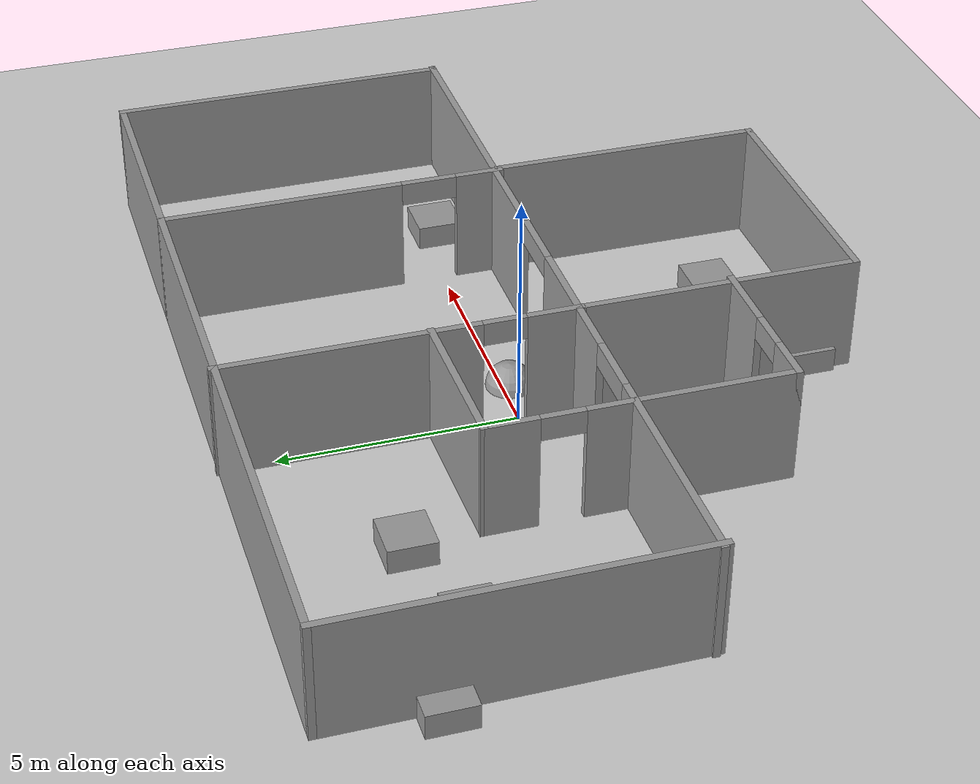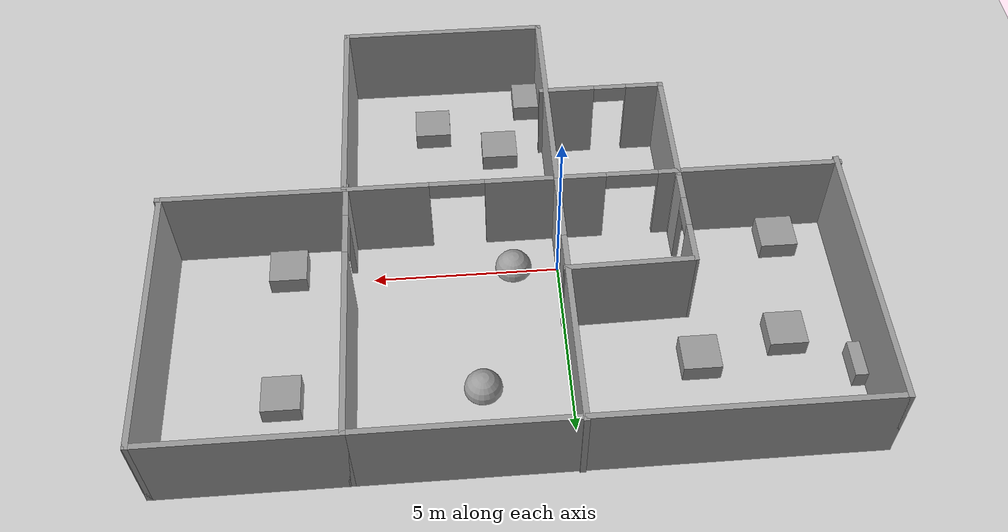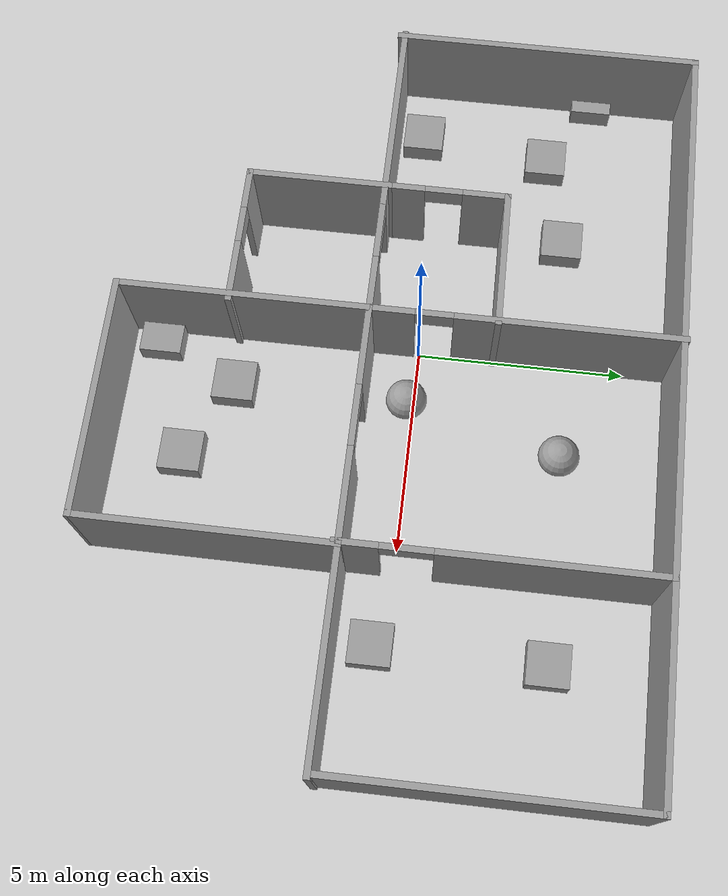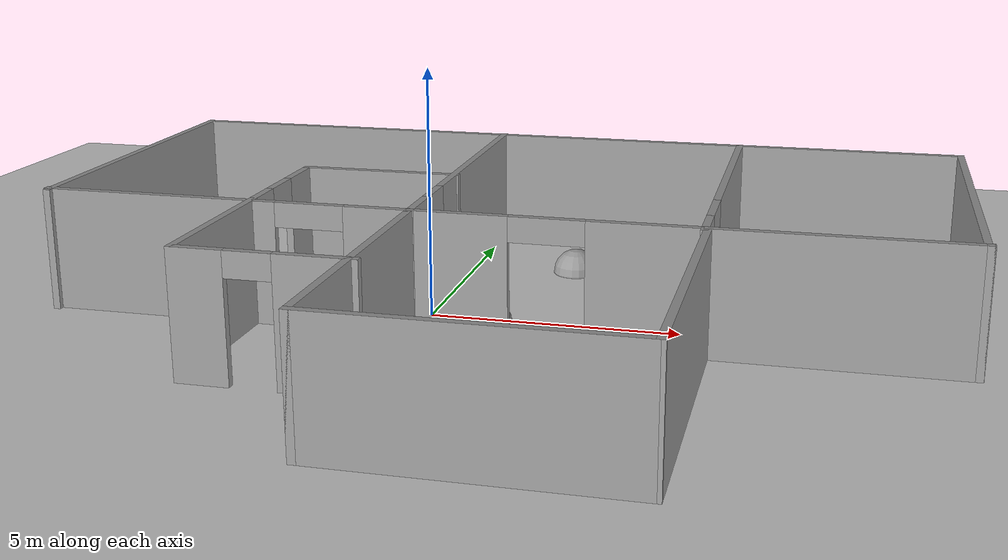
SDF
<?xml version="1.0" ?>
<sdf version="1.4">
  <world name="default">
    <include>
      <uri>model://ground_plane</uri>
    </include>
    <include>
      <uri>model://sun</uri>
    </include>
    <include>
      <uri>/home/anubhav/model_editor_models/floorplan_with_objects</uri>
    </include>
    <include>
      <uri>/home/anubhav/building_editor_models/Floorplan</uri>
      <name>gas_station</name>
    </include>
  </world>
</sdf>

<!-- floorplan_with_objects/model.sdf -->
<sdf version='1.6'>
  <model name='floorplan_with_objects'>
    <link name='link_0'>
      <inertial>
        <mass>1</mass>
        <inertia>
          <ixx>0.166667</ixx>
          <ixy>0</ixy>
          <ixz>0</ixz>
          <iyy>0.166667</iyy>
          <iyz>0</iyz>
          <izz>0.166667</izz>
        </inertia>
      </inertial>
      <pose frame=''>-5.69964 2.68015 0 0 -0 0</pose>
      <visual name='visual'>
        <pose frame=''>0 0 0 0 -0 0</pose>
        <geometry>
          <box>
            <size>1 1 1</size>
          </box>
        </geometry>
        <material>
          <lighting>1</lighting>
          <script>
            <uri>file://media/materials/scripts/gazebo.material</uri>
            <name>Gazebo/Grey</name>
          </script>
        </material>
        <transparency>0</transparency>
        <cast_shadows>1</cast_shadows>
      </visual>
      <collision name='collision'>
        <laser_retro>0</laser_retro>
        <max_contacts>10</max_contacts>
        <pose frame=''>0 0 0 0 -0 0</pose>
        <geometry>
          <box>
            <size>1 1 1</size>
          </box>
        </geometry>
        <surface>
          <friction>
            <ode>
              <mu>1</mu>
              <mu2>1</mu2>
              <fdir1>0 0 0</fdir1>
              <slip1>0</slip1>
              <slip2>0</slip2>
            </ode>
            <torsional>
              <coefficient>1</coefficient>
              <patch_radius>0</patch_radius>
              <surface_radius>0</surface_radius>
              <use_patch_radius>1</use_patch_radius>
              <ode>
                <slip>0</slip>
              </ode>
            </torsional>
          </friction>
          <bounce>
            <restitution_coefficient>0</restitution_coefficient>
            <threshold>1e+06</threshold>
          </bounce>
          <contact>
            <collide_without_contact>0</collide_without_contact>
            <collide_without_contact_bitmask>1</collide_without_contact_bitmask>
            <collide_bitmask>1</collide_bitmask>
            <ode>
              <soft_cfm>0</soft_cfm>
              <soft_erp>0.2</soft_erp>
              <kp>1e+13</kp>
              <kd>1</kd>
              <max_vel>0.01</max_vel>
              <min_depth>0</min_depth>
            </ode>
            <bullet>
              <split_impulse>1</split_impulse>
              <split_impulse_penetration_threshold>-0.01</split_impulse_penetration_threshold>
              <soft_cfm>0</soft_cfm>
              <soft_erp>0.2</soft_erp>
              <kp>1e+13</kp>
              <kd>1</kd>
            </bullet>
          </contact>
        </surface>
      </collision>
    </link>
    <link name='link_1'>
      <inertial>
        <mass>1</mass>
        <inertia>
          <ixx>0.1</ixx>
          <ixy>0</ixy>
          <ixz>0</ixz>
          <iyy>0.1</iyy>
          <iyz>0</iyz>
          <izz>0.1</izz>
        </inertia>
      </inertial>
      <pose frame=''>2.23614 3.61059 0 0 -0 0</pose>
      <visual name='visual'>
        <pose frame=''>0 0 0 0 -0 0</pose>
        <geometry>
          <sphere>
            <radius>0.5</radius>
          </sphere>
        </geometry>
        <material>
          <lighting>1</lighting>
          <script>
            <uri>file://media/materials/scripts/gazebo.material</uri>
            <name>Gazebo/Grey</name>
          </script>
        </material>
        <transparency>0</transparency>
        <cast_shadows>1</cast_shadows>
      </visual>
      <collision name='collision'>
        <laser_retro>0</laser_retro>
        <max_contacts>10</max_contacts>
        <pose frame=''>0 0 0 0 -0 0</pose>
        <geometry>
          <sphere>
            <radius>0.5</radius>
          </sphere>
        </geometry>
        <surface>
          <friction>
            <ode>
              <mu>1</mu>
              <mu2>1</mu2>
              <fdir1>0 0 0</fdir1>
              <slip1>0</slip1>
              <slip2>0</slip2>
            </ode>
            <torsional>
              <coefficient>1</coefficient>
              <patch_radius>0</patch_radius>
              <surface_radius>0</surface_radius>
              <use_patch_radius>1</use_patch_radius>
              <ode>
                <slip>0</slip>
              </ode>
            </torsional>
          </friction>
          <bounce>
            <restitution_coefficient>0</restitution_coefficient>
            <threshold>1e+06</threshold>
          </bounce>
          <contact>
            <collide_without_contact>0</collide_without_contact>
            <collide_without_contact_bitmask>1</collide_without_contact_bitmask>
            <collide_bitmask>1</collide_bitmask>
            <ode>
              <soft_cfm>0</soft_cfm>
              <soft_erp>0.2</soft_erp>
              <kp>1e+13</kp>
              <kd>1</kd>
              <max_vel>0.01</max_vel>
              <min_depth>0</min_depth>
            </ode>
            <bullet>
              <split_impulse>1</split_impulse>
              <split_impulse_penetration_threshold>-0.01</split_impulse_penetration_threshold>
              <soft_cfm>0</soft_cfm>
              <soft_erp>0.2</soft_erp>
              <kp>1e+13</kp>
              <kd>1</kd>
            </bullet>
          </contact>
        </surface>
      </collision>
    </link>
    <link name='link_10'>
      <inertial>
        <mass>1</mass>
        <inertia>
          <ixx>0.166667</ixx>
          <ixy>0</ixy>
          <ixz>0</ixz>
          <iyy>0.166667</iyy>
          <iyz>0</iyz>
          <izz>0.166667</izz>
        </inertia>
      </inertial>
      <pose frame=''>-7.65721 3.74902 0 0 -0 0</pose>
      <visual name='visual'>
        <pose frame=''>0 0 0 0 -0 0</pose>
        <geometry>
          <box>
            <size>1 1 1</size>
          </box>
        </geometry>
        <material>
          <lighting>1</lighting>
          <script>
            <uri>file://media/materials/scripts/gazebo.material</uri>
            <name>Gazebo/Grey</name>
          </script>
        </material>
        <transparency>0</transparency>
        <cast_shadows>1</cast_shadows>
      </visual>
      <collision name='collision'>
        <laser_retro>0</laser_retro>
        <max_contacts>10</max_contacts>
        <pose frame=''>0 0 0 0 -0 0</pose>
        <geometry>
          <box>
            <size>1 1 1</size>
          </box>
        </geometry>
        <surface>
          <friction>
            <ode>
              <mu>1</mu>
              <mu2>1</mu2>
              <fdir1>0 0 0</fdir1>
              <slip1>0</slip1>
              <slip2>0</slip2>
            </ode>
            <torsional>
              <coefficient>1</coefficient>
              <patch_radius>0</patch_radius>
              <surface_radius>0</surface_radius>
              <use_patch_radius>1</use_patch_radius>
              <ode>
                <slip>0</slip>
              </ode>
            </torsional>
          </friction>
          <bounce>
            <restitution_coefficient>0</restitution_coefficient>
            <threshold>1e+06</threshold>
          </bounce>
          <contact>
            <collide_without_contact>0</collide_without_contact>
            <collide_without_contact_bitmask>1</collide_without_contact_bitmask>
            <collide_bitmask>1</collide_bitmask>
            <ode>
              <soft_cfm>0</soft_cfm>
              <soft_erp>0.2</soft_erp>
              <kp>1e+13</kp>
              <kd>1</kd>
              <max_vel>0.01</max_vel>
              <min_depth>0</min_depth>
            </ode>
            <bullet>
              <split_impulse>1</split_impulse>
              <split_impulse_penetration_threshold>-0.01</split_impulse_penetration_threshold>
              <soft_cfm>0</soft_cfm>
              <soft_erp>0.2</soft_erp>
              <kp>1e+13</kp>
              <kd>1</kd>
            </bullet>
          </contact>
        </surface>
      </collision>
    </link>
    <link name='link_2'>
      <inertial>
        <mass>1</mass>
        <inertia>
          <ixx>0.1</ixx>
          <ixy>0</ixy>
          <ixz>0</ixz>
          <iyy>0.1</iyy>
          <iyz>0</iyz>
          <izz>0.1</izz>
        </inertia>
      </inertial>
      <pose frame=''>1.19211 -0.180632 0 0 -0 0</pose>
      <visual name='visual'>
        <pose frame=''>0 0 0 0 -0 0</pose>
        <geometry>
          <sphere>
            <radius>0.5</radius>
          </sphere>
        </geometry>
        <material>
          <lighting>1</lighting>
          <script>
            <uri>file://media/materials/scripts/gazebo.material</uri>
            <name>Gazebo/Grey</name>
          </script>
        </material>
        <transparency>0</transparency>
        <cast_shadows>1</cast_shadows>
      </visual>
      <collision name='collision'>
        <laser_retro>0</laser_retro>
        <max_contacts>10</max_contacts>
        <pose frame=''>0 0 0 0 -0 0</pose>
        <geometry>
          <sphere>
            <radius>0.5</radius>
          </sphere>
        </geometry>
        <surface>
          <friction>
            <ode>
              <mu>1</mu>
              <mu2>1</mu2>
              <fdir1>0 0 0</fdir1>
              <slip1>0</slip1>
              <slip2>0</slip2>
            </ode>
            <torsional>
              <coefficient>1</coefficient>
              <patch_radius>0</patch_radius>
              <surface_radius>0</surface_radius>
              <use_patch_radius>1</use_patch_radius>
              <ode>
                <slip>0</slip>
              </ode>
            </torsional>
          </friction>
          <bounce>
            <restitution_coefficient>0</restitution_coefficient>
            <threshold>1e+06</threshold>
          </bounce>
          <contact>
            <collide_without_contact>0</collide_without_contact>
            <collide_without_contact_bitmask>1</collide_without_contact_bitmask>
            <collide_bitmask>1</collide_bitmask>
            <ode>
              <soft_cfm>0</soft_cfm>
              <soft_erp>0.2</soft_erp>
              <kp>1e+13</kp>
              <kd>1</kd>
              <max_vel>0.01</max_vel>
              <min_depth>0</min_depth>
            </ode>
            <bullet>
              <split_impulse>1</split_impulse>
              <split_impulse_penetration_threshold>-0.01</split_impulse_penetration_threshold>
              <soft_cfm>0</soft_cfm>
              <soft_erp>0.2</soft_erp>
              <kp>1e+13</kp>
              <kd>1</kd>
            </bullet>
          </contact>
        </surface>
      </collision>
    </link>
    <link name='link_3'>
      <inertial>
        <mass>1</mass>
        <inertia>
          <ixx>0.166667</ixx>
          <ixy>0</ixy>
          <ixz>0</ixz>
          <iyy>0.166667</iyy>
          <iyz>0</iyz>
          <izz>0.166667</izz>
        </inertia>
      </inertial>
      <pose frame=''>7.27265 -0.327209 0 0 -0 0</pose>
      <visual name='visual'>
        <pose frame=''>0 0 0 0 -0 0</pose>
        <geometry>
          <box>
            <size>1 1 1</size>
          </box>
        </geometry>
        <material>
          <lighting>1</lighting>
          <script>
            <uri>file://media/materials/scripts/gazebo.material</uri>
            <name>Gazebo/Grey</name>
          </script>
        </material>
        <transparency>0</transparency>
        <cast_shadows>1</cast_shadows>
      </visual>
      <collision name='collision'>
        <laser_retro>0</laser_retro>
        <max_contacts>10</max_contacts>
        <pose frame=''>0 0 0 0 -0 0</pose>
        <geometry>
          <box>
            <size>1 1 1</size>
          </box>
        </geometry>
        <surface>
          <friction>
            <ode>
              <mu>1</mu>
              <mu2>1</mu2>
              <fdir1>0 0 0</fdir1>
              <slip1>0</slip1>
              <slip2>0</slip2>
            </ode>
            <torsional>
              <coefficient>1</coefficient>
              <patch_radius>0</patch_radius>
              <surface_radius>0</surface_radius>
              <use_patch_radius>1</use_patch_radius>
              <ode>
                <slip>0</slip>
              </ode>
            </torsional>
          </friction>
          <bounce>
            <restitution_coefficient>0</restitution_coefficient>
            <threshold>1e+06</threshold>
          </bounce>
          <contact>
            <collide_without_contact>0</collide_without_contact>
            <collide_without_contact_bitmask>1</collide_without_contact_bitmask>
            <collide_bitmask>1</collide_bitmask>
            <ode>
              <soft_cfm>0</soft_cfm>
              <soft_erp>0.2</soft_erp>
              <kp>1e+13</kp>
              <kd>1</kd>
              <max_vel>0.01</max_vel>
              <min_depth>0</min_depth>
            </ode>
            <bullet>
              <split_impulse>1</split_impulse>
              <split_impulse_penetration_threshold>-0.01</split_impulse_penetration_threshold>
              <soft_cfm>0</soft_cfm>
              <soft_erp>0.2</soft_erp>
              <kp>1e+13</kp>
              <kd>1</kd>
            </bullet>
          </contact>
        </surface>
      </collision>
    </link>
    <link name='link_4'>
      <inertial>
        <mass>1</mass>
        <inertia>
          <ixx>0.166667</ixx>
          <ixy>0</ixy>
          <ixz>0</ixz>
          <iyy>0.166667</iyy>
          <iyz>0</iyz>
          <izz>0.166667</izz>
        </inertia>
      </inertial>
      <pose frame=''>7.30996 3.68311 0 0 -0 0</pose>
      <visual name='visual'>
        <pose frame=''>0 0 0 0 -0 0</pose>
        <geometry>
          <box>
            <size>1 1 1</size>
          </box>
        </geometry>
        <material>
          <lighting>1</lighting>
          <script>
            <uri>file://media/materials/scripts/gazebo.material</uri>
            <name>Gazebo/Grey</name>
          </script>
        </material>
        <transparency>0</transparency>
        <cast_shadows>1</cast_shadows>
      </visual>
      <collision name='collision'>
        <laser_retro>0</laser_retro>
        <max_contacts>10</max_contacts>
        <pose frame=''>0 0 0 0 -0 0</pose>
        <geometry>
          <box>
            <size>1 1 1</size>
          </box>
        </geometry>
        <surface>
          <friction>
            <ode>
              <mu>1</mu>
              <mu2>1</mu2>
              <fdir1>0 0 0</fdir1>
              <slip1>0</slip1>
              <slip2>0</slip2>
            </ode>
            <torsional>
              <coefficient>1</coefficient>
              <patch_radius>0</patch_radius>
              <surface_radius>0</surface_radius>
              <use_patch_radius>1</use_patch_radius>
              <ode>
                <slip>0</slip>
              </ode>
            </torsional>
          </friction>
          <bounce>
            <restitution_coefficient>0</restitution_coefficient>
            <threshold>1e+06</threshold>
          </bounce>
          <contact>
            <collide_without_contact>0</collide_without_contact>
            <collide_without_contact_bitmask>1</collide_without_contact_bitmask>
            <collide_bitmask>1</collide_bitmask>
            <ode>
              <soft_cfm>0</soft_cfm>
              <soft_erp>0.2</soft_erp>
              <kp>1e+13</kp>
              <kd>1</kd>
              <max_vel>0.01</max_vel>
              <min_depth>0</min_depth>
            </ode>
            <bullet>
              <split_impulse>1</split_impulse>
              <split_impulse_penetration_threshold>-0.01</split_impulse_penetration_threshold>
              <soft_cfm>0</soft_cfm>
              <soft_erp>0.2</soft_erp>
              <kp>1e+13</kp>
              <kd>1</kd>
            </bullet>
          </contact>
        </surface>
      </collision>
    </link>
    <link name='link_5'>
      <inertial>
        <mass>1</mass>
        <inertia>
          <ixx>0.166667</ixx>
          <ixy>0</ixy>
          <ixz>0</ixz>
          <iyy>0.166667</iyy>
          <iyz>0</iyz>
          <izz>0.166667</izz>
        </inertia>
      </inertial>
      <pose frame=''>1.31332 -4.34948 0 0 -0 0</pose>
      <visual name='visual'>
        <pose frame=''>0 0 0 0 -0 0</pose>
        <geometry>
          <box>
            <size>1 1 1</size>
          </box>
        </geometry>
        <material>
          <lighting>1</lighting>
          <script>
            <uri>file://media/materials/scripts/gazebo.material</uri>
            <name>Gazebo/Grey</name>
          </script>
        </material>
        <transparency>0</transparency>
        <cast_shadows>1</cast_shadows>
      </visual>
      <collision name='collision'>
        <laser_retro>0</laser_retro>
        <max_contacts>10</max_contacts>
        <pose frame=''>0 0 0 0 -0 0</pose>
        <geometry>
          <box>
            <size>1 1 1</size>
          </box>
        </geometry>
        <surface>
          <friction>
            <ode>
              <mu>1</mu>
              <mu2>1</mu2>
              <fdir1>0 0 0</fdir1>
              <slip1>0</slip1>
              <slip2>0</slip2>
            </ode>
            <torsional>
              <coefficient>1</coefficient>
              <patch_radius>0</patch_radius>
              <surface_radius>0</surface_radius>
              <use_patch_radius>1</use_patch_radius>
              <ode>
                <slip>0</slip>
              </ode>
            </torsional>
          </friction>
          <bounce>
            <restitution_coefficient>0</restitution_coefficient>
            <threshold>1e+06</threshold>
          </bounce>
          <contact>
            <collide_without_contact>0</collide_without_contact>
            <collide_without_contact_bitmask>1</collide_without_contact_bitmask>
            <collide_bitmask>1</collide_bitmask>
            <ode>
              <soft_cfm>0</soft_cfm>
              <soft_erp>0.2</soft_erp>
              <kp>1e+13</kp>
              <kd>1</kd>
              <max_vel>0.01</max_vel>
              <min_depth>0</min_depth>
            </ode>
            <bullet>
              <split_impulse>1</split_impulse>
              <split_impulse_penetration_threshold>-0.01</split_impulse_penetration_threshold>
              <soft_cfm>0</soft_cfm>
              <soft_erp>0.2</soft_erp>
              <kp>1e+13</kp>
              <kd>1</kd>
            </bullet>
          </contact>
        </surface>
      </collision>
    </link>
    <link name='link_6'>
      <inertial>
        <mass>1</mass>
        <inertia>
          <ixx>0.166667</ixx>
          <ixy>0</ixy>
          <ixz>0</ixz>
          <iyy>0.166667</iyy>
          <iyz>0</iyz>
          <izz>0.166667</izz>
        </inertia>
      </inertial>
      <pose frame=''>3.21663 -5.33271 0 0 -0 0</pose>
      <visual name='visual'>
        <pose frame=''>0 0 0 0 -0 0</pose>
        <geometry>
          <box>
            <size>1 1 1</size>
          </box>
        </geometry>
        <material>
          <lighting>1</lighting>
          <script>
            <uri>file://media/materials/scripts/gazebo.material</uri>
            <name>Gazebo/Grey</name>
          </script>
        </material>
        <transparency>0</transparency>
        <cast_shadows>1</cast_shadows>
      </visual>
      <collision name='collision'>
        <laser_retro>0</laser_retro>
        <max_contacts>10</max_contacts>
        <pose frame=''>0 0 0 0 -0 0</pose>
        <geometry>
          <box>
            <size>1 1 1</size>
          </box>
        </geometry>
        <surface>
          <friction>
            <ode>
              <mu>1</mu>
              <mu2>1</mu2>
              <fdir1>0 0 0</fdir1>
              <slip1>0</slip1>
              <slip2>0</slip2>
            </ode>
            <torsional>
              <coefficient>1</coefficient>
              <patch_radius>0</patch_radius>
              <surface_radius>0</surface_radius>
              <use_patch_radius>1</use_patch_radius>
              <ode>
                <slip>0</slip>
              </ode>
            </torsional>
          </friction>
          <bounce>
            <restitution_coefficient>0</restitution_coefficient>
            <threshold>1e+06</threshold>
          </bounce>
          <contact>
            <collide_without_contact>0</collide_without_contact>
            <collide_without_contact_bitmask>1</collide_without_contact_bitmask>
            <collide_bitmask>1</collide_bitmask>
            <ode>
              <soft_cfm>0</soft_cfm>
              <soft_erp>0.2</soft_erp>
              <kp>1e+13</kp>
              <kd>1</kd>
              <max_vel>0.01</max_vel>
              <min_depth>0</min_depth>
            </ode>
            <bullet>
              <split_impulse>1</split_impulse>
              <split_impulse_penetration_threshold>-0.01</split_impulse_penetration_threshold>
              <soft_cfm>0</soft_cfm>
              <soft_erp>0.2</soft_erp>
              <kp>1e+13</kp>
              <kd>1</kd>
            </bullet>
          </contact>
        </surface>
      </collision>
    </link>
    <link name='link_7'>
      <inertial>
        <mass>1</mass>
        <inertia>
          <ixx>0.166667</ixx>
          <ixy>0</ixy>
          <ixz>0</ixz>
          <iyy>0.166667</iyy>
          <iyz>0</iyz>
          <izz>0.166667</izz>
        </inertia>
      </inertial>
      <pose frame=''>0.279299 -6.27607 0 0 -0 0</pose>
      <visual name='visual'>
        <pose frame=''>0 0 0 0 -0 0</pose>
        <geometry>
          <box>
            <size>1 1 1</size>
          </box>
        </geometry>
        <material>
          <lighting>1</lighting>
          <script>
            <uri>file://media/materials/scripts/gazebo.material</uri>
            <name>Gazebo/Grey</name>
          </script>
        </material>
        <transparency>0</transparency>
        <cast_shadows>1</cast_shadows>
      </visual>
      <collision name='collision'>
        <laser_retro>0</laser_retro>
        <max_contacts>10</max_contacts>
        <pose frame=''>0 0 0 0 -0 0</pose>
        <geometry>
          <box>
            <size>1 1 1</size>
          </box>
        </geometry>
        <surface>
          <friction>
            <ode>
              <mu>1</mu>
              <mu2>1</mu2>
              <fdir1>0 0 0</fdir1>
              <slip1>0</slip1>
              <slip2>0</slip2>
            </ode>
            <torsional>
              <coefficient>1</coefficient>
              <patch_radius>0</patch_radius>
              <surface_radius>0</surface_radius>
              <use_patch_radius>1</use_patch_radius>
              <ode>
                <slip>0</slip>
              </ode>
            </torsional>
          </friction>
          <bounce>
            <restitution_coefficient>0</restitution_coefficient>
            <threshold>1e+06</threshold>
          </bounce>
          <contact>
            <collide_without_contact>0</collide_without_contact>
            <collide_without_contact_bitmask>1</collide_without_contact_bitmask>
            <collide_bitmask>1</collide_bitmask>
            <ode>
              <soft_cfm>0</soft_cfm>
              <soft_erp>0.2</soft_erp>
              <kp>1e+13</kp>
              <kd>1</kd>
              <max_vel>0.01</max_vel>
              <min_depth>0</min_depth>
            </ode>
            <bullet>
              <split_impulse>1</split_impulse>
              <split_impulse_penetration_threshold>-0.01</split_impulse_penetration_threshold>
              <soft_cfm>0</soft_cfm>
              <soft_erp>0.2</soft_erp>
              <kp>1e+13</kp>
              <kd>1</kd>
            </bullet>
          </contact>
        </surface>
      </collision>
    </link>
    <link name='link_8'>
      <inertial>
        <mass>1</mass>
        <inertia>
          <ixx>0.166667</ixx>
          <ixy>0</ixy>
          <ixz>0</ixz>
          <iyy>0.166667</iyy>
          <iyz>0</iyz>
          <izz>0.166667</izz>
        </inertia>
      </inertial>
      <pose frame=''>-6.10308 -0.511614 0 0 -0 0</pose>
      <visual name='visual'>
        <pose frame=''>0 0 0 0 -0 0</pose>
        <geometry>
          <box>
            <size>1 1 1</size>
          </box>
        </geometry>
        <material>
          <lighting>1</lighting>
          <script>
            <uri>file://media/materials/scripts/gazebo.material</uri>
            <name>Gazebo/Grey</name>
          </script>
        </material>
        <transparency>0</transparency>
        <cast_shadows>1</cast_shadows>
      </visual>
      <collision name='collision'>
        <laser_retro>0</laser_retro>
        <max_contacts>10</max_contacts>
        <pose frame=''>0 0 0 0 -0 0</pose>
        <geometry>
          <box>
            <size>1 1 1</size>
          </box>
        </geometry>
        <surface>
          <friction>
            <ode>
              <mu>1</mu>
              <mu2>1</mu2>
              <fdir1>0 0 0</fdir1>
              <slip1>0</slip1>
              <slip2>0</slip2>
            </ode>
            <torsional>
              <coefficient>1</coefficient>
              <patch_radius>0</patch_radius>
              <surface_radius>0</surface_radius>
              <use_patch_radius>1</use_patch_radius>
              <ode>
                <slip>0</slip>
              </ode>
            </torsional>
          </friction>
          <bounce>
            <restitution_coefficient>0</restitution_coefficient>
            <threshold>1e+06</threshold>
          </bounce>
          <contact>
            <collide_without_contact>0</collide_without_contact>
            <collide_without_contact_bitmask>1</collide_without_contact_bitmask>
            <collide_bitmask>1</collide_bitmask>
            <ode>
              <soft_cfm>0</soft_cfm>
              <soft_erp>0.2</soft_erp>
              <kp>1e+13</kp>
              <kd>1</kd>
              <max_vel>0.01</max_vel>
              <min_depth>0</min_depth>
            </ode>
            <bullet>
              <split_impulse>1</split_impulse>
              <split_impulse_penetration_threshold>-0.01</split_impulse_penetration_threshold>
              <soft_cfm>0</soft_cfm>
              <soft_erp>0.2</soft_erp>
              <kp>1e+13</kp>
              <kd>1</kd>
            </bullet>
          </contact>
        </surface>
      </collision>
    </link>
    <link name='link_9'>
      <inertial>
        <mass>1</mass>
        <inertia>
          <ixx>0.166667</ixx>
          <ixy>0</ixy>
          <ixz>0</ixz>
          <iyy>0.166667</iyy>
          <iyz>0</iyz>
          <izz>0.166667</izz>
        </inertia>
      </inertial>
      <pose frame=''>-3.36017 3.25483 0 0 -0 0</pose>
      <visual name='visual'>
        <pose frame=''>0 0 0 0 -0 0</pose>
        <geometry>
          <box>
            <size>1 1 1</size>
          </box>
        </geometry>
        <material>
          <lighting>1</lighting>
          <script>
            <uri>file://media/materials/scripts/gazebo.material</uri>
            <name>Gazebo/Grey</name>
          </script>
        </material>
        <transparency>0</transparency>
        <cast_shadows>1</cast_shadows>
      </visual>
      <collision name='collision'>
        <laser_retro>0</laser_retro>
        <max_contacts>10</max_contacts>
        <pose frame=''>0 0 0 0 -0 0</pose>
        <geometry>
          <box>
            <size>1 1 1</size>
          </box>
        </geometry>
        <surface>
          <friction>
            <ode>
              <mu>1</mu>
              <mu2>1</mu2>
              <fdir1>0 0 0</fdir1>
              <slip1>0</slip1>
              <slip2>0</slip2>
            </ode>
            <torsional>
              <coefficient>1</coefficient>
              <patch_radius>0</patch_radius>
              <surface_radius>0</surface_radius>
              <use_patch_radius>1</use_patch_radius>
              <ode>
                <slip>0</slip>
              </ode>
            </torsional>
          </friction>
          <bounce>
            <restitution_coefficient>0</restitution_coefficient>
            <threshold>1e+06</threshold>
          </bounce>
          <contact>
            <collide_without_contact>0</collide_without_contact>
            <collide_without_contact_bitmask>1</collide_without_contact_bitmask>
            <collide_bitmask>1</collide_bitmask>
            <ode>
              <soft_cfm>0</soft_cfm>
              <soft_erp>0.2</soft_erp>
              <kp>1e+13</kp>
              <kd>1</kd>
              <max_vel>0.01</max_vel>
              <min_depth>0</min_depth>
            </ode>
            <bullet>
              <split_impulse>1</split_impulse>
              <split_impulse_penetration_threshold>-0.01</split_impulse_penetration_threshold>
              <soft_cfm>0</soft_cfm>
              <soft_erp>0.2</soft_erp>
              <kp>1e+13</kp>
              <kd>1</kd>
            </bullet>
          </contact>
        </surface>
      </collision>
    </link>
    <static>0</static>
    <allow_auto_disable>1</allow_auto_disable>
  </model>
</sdf>

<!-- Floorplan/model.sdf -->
<sdf version='1.6'>
  <model name='Floorplan'>
    <pose frame=''>1.40637 -0.495074 0 0 -0 0</pose>
    <link name='Wall_0'>
      <collision name='Wall_0_Collision'>
        <geometry>
          <box>
            <size>13.25 0.15 2.5</size>
          </box>
        </geometry>
        <pose frame=''>0 0 1.25 0 -0 0</pose>
      </collision>
      <visual name='Wall_0_Visual'>
        <pose frame=''>0 0 1.25 0 -0 0</pose>
        <geometry>
          <box>
            <size>13.25 0.15 2.5</size>
          </box>
        </geometry>
        <material>
          <script>
            <uri>file://media/materials/scripts/gazebo.material</uri>
            <name>Gazebo/Grey</name>
          </script>
          <ambient>1 1 1 1</ambient>
        </material>
        <meta>
          <layer>0</layer>
        </meta>
      </visual>
      <pose frame=''>-2.42637 6.55507 0 0 -0 0</pose>
    </link>
    <link name='Wall_14'>
      <pose frame=''>-5.225 -0.693246 0 0 -0 3.14159</pose>
      <visual name='Wall_14_Visual_0'>
        <pose frame=''>-3.17008 0 1.25 0 -0 0</pose>
        <geometry>
          <box>
            <size>1.40985 0.15 2.5</size>
          </box>
        </geometry>
        <material>
          <script>
            <uri>file://media/materials/scripts/gazebo.material</uri>
            <name>Gazebo/Grey</name>
          </script>
          <ambient>1 1 1 1</ambient>
        </material>
        <meta>
          <layer>0</layer>
        </meta>
      </visual>
      <collision name='Wall_14_Collision_0'>
        <geometry>
          <box>
            <size>1.40985 0.15 2.5</size>
          </box>
        </geometry>
        <pose frame=''>-3.17008 0 1.25 0 -0 0</pose>
      </collision>
      <visual name='Wall_14_Visual_1'>
        <pose frame=''>1.40067 0 1.25 0 -0 0</pose>
        <geometry>
          <box>
            <size>4.94866 0.15 2.5</size>
          </box>
        </geometry>
        <material>
          <script>
            <uri>file://media/materials/scripts/gazebo.material</uri>
            <name>Gazebo/Grey</name>
          </script>
          <ambient>1 1 1 1</ambient>
        </material>
        <meta>
          <layer>0</layer>
        </meta>
      </visual>
      <collision name='Wall_14_Collision_1'>
        <geometry>
          <box>
            <size>4.94866 0.15 2.5</size>
          </box>
        </geometry>
        <pose frame=''>1.40067 0 1.25 0 -0 0</pose>
      </collision>
      <visual name='Wall_14_Visual_2'>
        <pose frame=''>-1.76941 0 2.25 0 -0 0</pose>
        <geometry>
          <box>
            <size>1.39149 0.15 0.5</size>
          </box>
        </geometry>
        <material>
          <script>
            <uri>file://media/materials/scripts/gazebo.material</uri>
            <name>Gazebo/Grey</name>
          </script>
          <ambient>1 1 1 1</ambient>
        </material>
        <meta>
          <layer>0</layer>
        </meta>
      </visual>
      <collision name='Wall_14_Collision_2'>
        <geometry>
          <box>
            <size>1.39149 0.15 0.5</size>
          </box>
        </geometry>
        <pose frame=''>-1.76941 0 2.25 0 -0 0</pose>
      </collision>
    </link>
    <link name='Wall_16'>
      <pose frame=''>-1.44249 2.92511 0 0 -0 -1.5708</pose>
      <visual name='Wall_16_Visual_0'>
        <pose frame=''>-1.04655 0 1.25 0 -0 0</pose>
        <geometry>
          <box>
            <size>5.40691 0.15 2.5</size>
          </box>
        </geometry>
        <material>
          <script>
            <uri>file://media/materials/scripts/gazebo.material</uri>
            <name>Gazebo/Grey</name>
          </script>
          <ambient>1 1 1 1</ambient>
        </material>
        <meta>
          <layer>0</layer>
        </meta>
      </visual>
      <collision name='Wall_16_Collision_0'>
        <geometry>
          <box>
            <size>5.40691 0.15 2.5</size>
          </box>
        </geometry>
        <pose frame=''>-1.04655 0 1.25 0 -0 0</pose>
      </collision>
      <visual name='Wall_16_Visual_1'>
        <pose frame=''>3.15346 0 1.25 0 -0 0</pose>
        <geometry>
          <box>
            <size>1.19309 0.15 2.5</size>
          </box>
        </geometry>
        <material>
          <script>
            <uri>file://media/materials/scripts/gazebo.material</uri>
            <name>Gazebo/Grey</name>
          </script>
          <ambient>1 1 1 1</ambient>
        </material>
        <meta>
          <layer>0</layer>
        </meta>
      </visual>
      <collision name='Wall_16_Collision_1'>
        <geometry>
          <box>
            <size>1.19309 0.15 2.5</size>
          </box>
        </geometry>
        <pose frame=''>3.15346 0 1.25 0 -0 0</pose>
      </collision>
      <visual name='Wall_16_Visual_2'>
        <pose frame=''>2.10691 0 2.25 0 -0 0</pose>
        <geometry>
          <box>
            <size>0.9 0.15 0.5</size>
          </box>
        </geometry>
        <material>
          <script>
            <uri>file://media/materials/scripts/gazebo.material</uri>
            <name>Gazebo/Grey</name>
          </script>
          <ambient>1 1 1 1</ambient>
        </material>
        <meta>
          <layer>0</layer>
        </meta>
      </visual>
      <collision name='Wall_16_Collision_2'>
        <geometry>
          <box>
            <size>0.9 0.15 0.5</size>
          </box>
        </geometry>
        <pose frame=''>2.10691 0 2.25 0 -0 0</pose>
      </collision>
    </link>
    <link name='Wall_18'>
      <collision name='Wall_18_Collision'>
        <geometry>
          <box>
            <size>6 0.15 2.5</size>
          </box>
        </geometry>
        <pose frame=''>0 0 1.25 0 -0 0</pose>
      </collision>
      <visual name='Wall_18_Visual'>
        <pose frame=''>0 0 1.25 0 -0 0</pose>
        <geometry>
          <box>
            <size>6 0.15 2.5</size>
          </box>
        </geometry>
        <material>
          <script>
            <uri>file://media/materials/scripts/gazebo.material</uri>
            <name>Gazebo/Grey</name>
          </script>
          <ambient>1 1 1 1</ambient>
        </material>
        <meta>
          <layer>0</layer>
        </meta>
      </visual>
      <pose frame=''>-1.44249 -3.67489 0 0 -0 -1.5708</pose>
    </link>
    <link name='Wall_19'>
      <collision name='Wall_19_Collision'>
        <geometry>
          <box>
            <size>5.75 0.15 2.5</size>
          </box>
        </geometry>
        <pose frame=''>0 0 1.25 0 -0 0</pose>
      </collision>
      <visual name='Wall_19_Visual'>
        <pose frame=''>0 0 1.25 0 -0 0</pose>
        <geometry>
          <box>
            <size>5.75 0.15 2.5</size>
          </box>
        </geometry>
        <material>
          <script>
            <uri>file://media/materials/scripts/gazebo.material</uri>
            <name>Gazebo/Grey</name>
          </script>
          <ambient>1 1 1 1</ambient>
        </material>
        <meta>
          <layer>0</layer>
        </meta>
      </visual>
      <pose frame=''>1.35751 -6.59989 0 0 -0 0</pose>
    </link>
    <link name='Wall_20'>
      <collision name='Wall_20_Collision'>
        <geometry>
          <box>
            <size>6.05667 0.15 2.5</size>
          </box>
        </geometry>
        <pose frame=''>0 0 1.25 0 -0 0</pose>
      </collision>
      <visual name='Wall_20_Visual'>
        <pose frame=''>0 0 1.25 0 -0 0</pose>
        <geometry>
          <box>
            <size>6.05667 0.15 2.5</size>
          </box>
        </geometry>
        <material>
          <script>
            <uri>file://media/materials/scripts/gazebo.material</uri>
            <name>Gazebo/Grey</name>
          </script>
          <ambient>1 1 1 1</ambient>
        </material>
        <meta>
          <layer>0</layer>
        </meta>
      </visual>
      <pose frame=''>4.16625 -3.64657 0 0 -0 1.56784</pose>
    </link>
    <link name='Wall_22'>
      <collision name='Wall_22_Collision'>
        <geometry>
          <box>
            <size>3.5 0.15 2.5</size>
          </box>
        </geometry>
        <pose frame=''>0 0 1.25 0 -0 0</pose>
      </collision>
      <visual name='Wall_22_Visual'>
        <pose frame=''>0 0 1.25 0 -0 0</pose>
        <geometry>
          <box>
            <size>3.5 0.15 2.5</size>
          </box>
        </geometry>
        <material>
          <script>
            <uri>file://media/materials/scripts/gazebo.material</uri>
            <name>Gazebo/Grey</name>
          </script>
          <ambient>1 1 1 1</ambient>
        </material>
        <meta>
          <layer>0</layer>
        </meta>
      </visual>
      <pose frame=''>-4.67815 -2.28079 0 0 -0 -1.5708</pose>
    </link>
    <link name='Wall_23'>
      <pose frame=''>-3.00315 -3.9558 0 0 -0 0</pose>
      <visual name='Wall_23_Visual_0'>
        <pose frame=''>-1.22494 0 1.25 0 -0 0</pose>
        <geometry>
          <box>
            <size>1.05013 0.15 2.5</size>
          </box>
        </geometry>
        <material>
          <script>
            <uri>file://media/materials/scripts/gazebo.material</uri>
            <name>Gazebo/Grey</name>
          </script>
          <ambient>1 1 1 1</ambient>
        </material>
        <meta>
          <layer>0</layer>
        </meta>
      </visual>
      <collision name='Wall_23_Collision_0'>
        <geometry>
          <box>
            <size>1.05013 0.15 2.5</size>
          </box>
        </geometry>
        <pose frame=''>-1.22494 0 1.25 0 -0 0</pose>
      </collision>
      <visual name='Wall_23_Visual_1'>
        <pose frame=''>0.975064 0 1.25 0 -0 0</pose>
        <geometry>
          <box>
            <size>1.54987 0.15 2.5</size>
          </box>
        </geometry>
        <material>
          <script>
            <uri>file://media/materials/scripts/gazebo.material</uri>
            <name>Gazebo/Grey</name>
          </script>
          <ambient>1 1 1 1</ambient>
        </material>
        <meta>
          <layer>0</layer>
        </meta>
      </visual>
      <collision name='Wall_23_Collision_1'>
        <geometry>
          <box>
            <size>1.54987 0.15 2.5</size>
          </box>
        </geometry>
        <pose frame=''>0.975064 0 1.25 0 -0 0</pose>
      </collision>
      <visual name='Wall_23_Visual_2'>
        <pose frame=''>-0.249871 0 2.25 0 -0 0</pose>
        <geometry>
          <box>
            <size>0.9 0.15 0.5</size>
          </box>
        </geometry>
        <material>
          <script>
            <uri>file://media/materials/scripts/gazebo.material</uri>
            <name>Gazebo/Grey</name>
          </script>
          <ambient>1 1 1 1</ambient>
        </material>
        <meta>
          <layer>0</layer>
        </meta>
      </visual>
      <collision name='Wall_23_Collision_2'>
        <geometry>
          <box>
            <size>0.9 0.15 0.5</size>
          </box>
        </geometry>
        <pose frame=''>-0.249871 0 2.25 0 -0 0</pose>
      </collision>
    </link>
    <link name='Wall_25'>
      <pose frame=''>-4.67815 0.819205 0 0 -0 1.5708</pose>
      <visual name='Wall_25_Visual_0'>
        <pose frame=''>-1.02843 0 1.25 0 -0 0</pose>
        <geometry>
          <box>
            <size>0.943137 0.15 2.5</size>
          </box>
        </geometry>
        <material>
          <script>
            <uri>file://media/materials/scripts/gazebo.material</uri>
            <name>Gazebo/Grey</name>
          </script>
          <ambient>1 1 1 1</ambient>
        </material>
        <meta>
          <layer>0</layer>
        </meta>
      </visual>
      <collision name='Wall_25_Collision_0'>
        <geometry>
          <box>
            <size>0.943137 0.15 2.5</size>
          </box>
        </geometry>
        <pose frame=''>-1.02843 0 1.25 0 -0 0</pose>
      </collision>
      <visual name='Wall_25_Visual_1'>
        <pose frame=''>0.921568 0 1.25 0 -0 0</pose>
        <geometry>
          <box>
            <size>1.15686 0.15 2.5</size>
          </box>
        </geometry>
        <material>
          <script>
            <uri>file://media/materials/scripts/gazebo.material</uri>
            <name>Gazebo/Grey</name>
          </script>
          <ambient>1 1 1 1</ambient>
        </material>
        <meta>
          <layer>0</layer>
        </meta>
      </visual>
      <collision name='Wall_25_Collision_1'>
        <geometry>
          <box>
            <size>1.15686 0.15 2.5</size>
          </box>
        </geometry>
        <pose frame=''>0.921568 0 1.25 0 -0 0</pose>
      </collision>
      <visual name='Wall_25_Visual_2'>
        <pose frame=''>-0.106863 0 2.25 0 -0 0</pose>
        <geometry>
          <box>
            <size>0.9 0.15 0.5</size>
          </box>
        </geometry>
        <material>
          <script>
            <uri>file://media/materials/scripts/gazebo.material</uri>
            <name>Gazebo/Grey</name>
          </script>
          <ambient>1 1 1 1</ambient>
        </material>
        <meta>
          <layer>0</layer>
        </meta>
      </visual>
      <collision name='Wall_25_Collision_2'>
        <geometry>
          <box>
            <size>0.9 0.15 0.5</size>
          </box>
        </geometry>
        <pose frame=''>-0.106863 0 2.25 0 -0 0</pose>
      </collision>
    </link>
    <link name='Wall_29'>
      <collision name='Wall_29_Collision'>
        <geometry>
          <box>
            <size>3.42108 0.15 2.5</size>
          </box>
        </geometry>
        <pose frame=''>0 0 1.25 0 -0 0</pose>
      </collision>
      <visual name='Wall_29_Visual'>
        <pose frame=''>0 0 1.25 0 -0 0</pose>
        <geometry>
          <box>
            <size>3.42108 0.15 2.5</size>
          </box>
        </geometry>
        <material>
          <script>
            <uri>file://media/materials/scripts/gazebo.material</uri>
            <name>Gazebo/Grey</name>
          </script>
          <ambient>1 1 1 1</ambient>
        </material>
        <meta>
          <layer>0</layer>
        </meta>
      </visual>
      <pose frame=''>-3.04283 2.27088 0 0 -0 -3.12528</pose>
    </link>
    <link name='Wall_3'>
      <pose frame=''>4.12364 2.88007 0 0 -0 -1.5708</pose>
      <visual name='Wall_3_Visual_0'>
        <pose frame=''>-1.12925 0 1.25 0 -0 0</pose>
        <geometry>
          <box>
            <size>5.2415 0.15 2.5</size>
          </box>
        </geometry>
        <material>
          <script>
            <uri>file://media/materials/scripts/gazebo.material</uri>
            <name>Gazebo/Grey</name>
          </script>
          <ambient>1 1 1 1</ambient>
        </material>
        <meta>
          <layer>0</layer>
        </meta>
      </visual>
      <collision name='Wall_3_Collision_0'>
        <geometry>
          <box>
            <size>5.2415 0.15 2.5</size>
          </box>
        </geometry>
        <pose frame=''>-1.12925 0 1.25 0 -0 0</pose>
      </collision>
      <visual name='Wall_3_Visual_1'>
        <pose frame=''>3.22253 0 1.25 0 -0 0</pose>
        <geometry>
          <box>
            <size>1.05495 0.15 2.5</size>
          </box>
        </geometry>
        <material>
          <script>
            <uri>file://media/materials/scripts/gazebo.material</uri>
            <name>Gazebo/Grey</name>
          </script>
          <ambient>1 1 1 1</ambient>
        </material>
        <meta>
          <layer>0</layer>
        </meta>
      </visual>
      <collision name='Wall_3_Collision_1'>
        <geometry>
          <box>
            <size>1.05495 0.15 2.5</size>
          </box>
        </geometry>
        <pose frame=''>3.22253 0 1.25 0 -0 0</pose>
      </collision>
      <visual name='Wall_3_Visual_2'>
        <pose frame=''>2.09328 0 2.25 0 -0 0</pose>
        <geometry>
          <box>
            <size>1.20355 0.15 0.5</size>
          </box>
        </geometry>
        <material>
          <script>
            <uri>file://media/materials/scripts/gazebo.material</uri>
            <name>Gazebo/Grey</name>
          </script>
          <ambient>1 1 1 1</ambient>
        </material>
        <meta>
          <layer>0</layer>
        </meta>
      </visual>
      <collision name='Wall_3_Collision_2'>
        <geometry>
          <box>
            <size>1.20355 0.15 0.5</size>
          </box>
        </geometry>
        <pose frame=''>2.09328 0 2.25 0 -0 0</pose>
      </collision>
    </link>
    <link name='Wall_31'>
      <collision name='Wall_31_Collision'>
        <geometry>
          <box>
            <size>5 0.15 2.5</size>
          </box>
        </geometry>
        <pose frame=''>0 0 1.25 0 -0 0</pose>
      </collision>
      <visual name='Wall_31_Visual'>
        <pose frame=''>0 0 1.25 0 -0 0</pose>
        <geometry>
          <box>
            <size>5 0.15 2.5</size>
          </box>
        </geometry>
        <material>
          <script>
            <uri>file://media/materials/scripts/gazebo.material</uri>
            <name>Gazebo/Grey</name>
          </script>
          <ambient>1 1 1 1</ambient>
        </material>
        <meta>
          <layer>0</layer>
        </meta>
      </visual>
      <pose frame=''>6.54863 6.55507 0 0 -0 0</pose>
    </link>
    <link name='Wall_32'>
      <collision name='Wall_32_Collision'>
        <geometry>
          <box>
            <size>7.25 0.15 2.5</size>
          </box>
        </geometry>
        <pose frame=''>0 0 1.25 0 -0 0</pose>
      </collision>
      <visual name='Wall_32_Visual'>
        <pose frame=''>0 0 1.25 0 -0 0</pose>
        <geometry>
          <box>
            <size>7.25 0.15 2.5</size>
          </box>
        </geometry>
        <material>
          <script>
            <uri>file://media/materials/scripts/gazebo.material</uri>
            <name>Gazebo/Grey</name>
          </script>
          <ambient>1 1 1 1</ambient>
        </material>
        <meta>
          <layer>0</layer>
        </meta>
      </visual>
      <pose frame=''>8.97363 3.00507 0 0 -0 -1.5708</pose>
    </link>
    <link name='Wall_34'>
      <collision name='Wall_34_Collision'>
        <geometry>
          <box>
            <size>5 0.15 2.5</size>
          </box>
        </geometry>
        <pose frame=''>0 0 1.25 0 -0 0</pose>
      </collision>
      <visual name='Wall_34_Visual'>
        <pose frame=''>0 0 1.25 0 -0 0</pose>
        <geometry>
          <box>
            <size>5 0.15 2.5</size>
          </box>
        </geometry>
        <material>
          <script>
            <uri>file://media/materials/scripts/gazebo.material</uri>
            <name>Gazebo/Grey</name>
          </script>
          <ambient>1 1 1 1</ambient>
        </material>
        <meta>
          <layer>0</layer>
        </meta>
      </visual>
      <pose frame=''>6.6 -0.693246 0 0 -0 0</pose>
    </link>
    <link name='Wall_35'>
      <collision name='Wall_35_Collision'>
        <geometry>
          <box>
            <size>0.15 0.15 2.5</size>
          </box>
        </geometry>
        <pose frame=''>0 0 1.25 0 -0 0</pose>
      </collision>
      <visual name='Wall_35_Visual'>
        <pose frame=''>0 0 1.25 0 -0 0</pose>
        <geometry>
          <box>
            <size>0.15 0.15 2.5</size>
          </box>
        </geometry>
        <material>
          <script>
            <uri>file://media/materials/scripts/gazebo.material</uri>
            <name>Gazebo/Grey</name>
          </script>
          <ambient>1 1 1 1</ambient>
        </material>
        <meta>
          <layer>0</layer>
        </meta>
      </visual>
      <pose frame=''>9.025 -0.693246 0 0 -0 0</pose>
    </link>
    <link name='Wall_6'>
      <pose frame=''>1.375 -0.693246 0 0 -0 0</pose>
      <visual name='Wall_6_Visual_0'>
        <pose frame=''>-1.88941 0 1.25 0 -0 0</pose>
        <geometry>
          <box>
            <size>1.97119 0.15 2.5</size>
          </box>
        </geometry>
        <material>
          <script>
            <uri>file://media/materials/scripts/gazebo.material</uri>
            <name>Gazebo/Grey</name>
          </script>
          <ambient>1 1 1 1</ambient>
        </material>
        <meta>
          <layer>0</layer>
        </meta>
      </visual>
      <collision name='Wall_6_Collision_0'>
        <geometry>
          <box>
            <size>1.97119 0.15 2.5</size>
          </box>
        </geometry>
        <pose frame=''>-1.88941 0 1.25 0 -0 0</pose>
      </collision>
      <visual name='Wall_6_Visual_1'>
        <pose frame=''>1.71948 0 1.25 0 -0 0</pose>
        <geometry>
          <box>
            <size>2.31103 0.15 2.5</size>
          </box>
        </geometry>
        <material>
          <script>
            <uri>file://media/materials/scripts/gazebo.material</uri>
            <name>Gazebo/Grey</name>
          </script>
          <ambient>1 1 1 1</ambient>
        </material>
        <meta>
          <layer>0</layer>
        </meta>
      </visual>
      <collision name='Wall_6_Collision_1'>
        <geometry>
          <box>
            <size>2.31103 0.15 2.5</size>
          </box>
        </geometry>
        <pose frame=''>1.71948 0 1.25 0 -0 0</pose>
      </collision>
      <visual name='Wall_6_Visual_2'>
        <pose frame=''>-0.169923 0 2.25 0 -0 0</pose>
        <geometry>
          <box>
            <size>1.46778 0.15 0.5</size>
          </box>
        </geometry>
        <material>
          <script>
            <uri>file://media/materials/scripts/gazebo.material</uri>
            <name>Gazebo/Grey</name>
          </script>
          <ambient>1 1 1 1</ambient>
        </material>
        <meta>
          <layer>0</layer>
        </meta>
      </visual>
      <collision name='Wall_6_Collision_2'>
        <geometry>
          <box>
            <size>1.46778 0.15 0.5</size>
          </box>
        </geometry>
        <pose frame=''>-0.169923 0 2.25 0 -0 0</pose>
      </collision>
    </link>
    <link name='Wall_8'>
      <collision name='Wall_8_Collision'>
        <geometry>
          <box>
            <size>7.5 0.15 2.5</size>
          </box>
        </geometry>
        <pose frame=''>0 0 1.25 0 -0 0</pose>
      </collision>
      <visual name='Wall_8_Visual'>
        <pose frame=''>0 0 1.25 0 -0 0</pose>
        <geometry>
          <box>
            <size>7.5 0.15 2.5</size>
          </box>
        </geometry>
        <material>
          <script>
            <uri>file://media/materials/scripts/gazebo.material</uri>
            <name>Gazebo/Grey</name>
          </script>
          <ambient>1 1 1 1</ambient>
        </material>
        <meta>
          <layer>0</layer>
        </meta>
      </visual>
      <pose frame=''>-8.97636 2.88007 0 0 -0 -1.5708</pose>
    </link>
    <static>1</static>
  </model>
</sdf>
